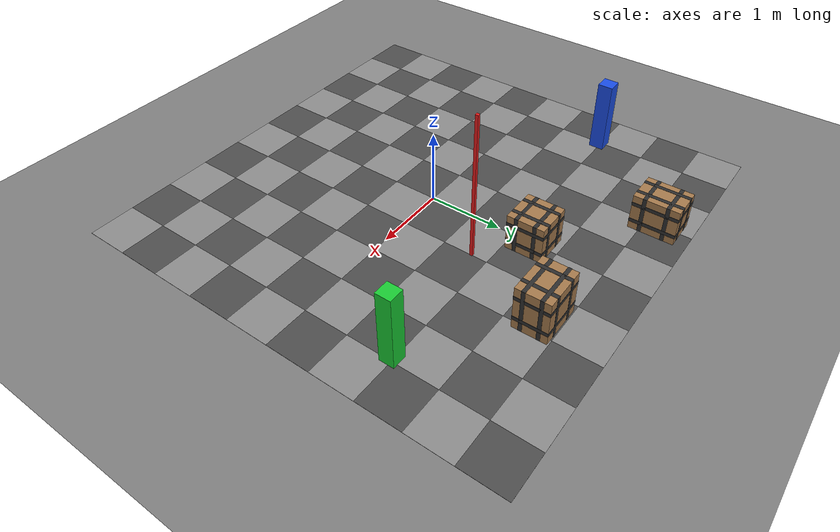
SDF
<sdf version="1.9">
 <world name="ecps295_camtest_tape">
  <physics name="1ms" type="ignore">
   <max_step_size>0.001</max_step_size>
   <real_time_factor>1.0</real_time_factor>
  </physics>
  <plugin filename="gz-sim-physics-system" name="gz::sim::systems::Physics"/>
  <plugin filename="gz-sim-sensors-system" name="gz::sim::systems::Sensors">
   <render_engine>ogre2</render_engine>
  </plugin>
  <plugin filename="gz-sim-user-commands-system" name="gz::sim::systems::UserCommands"/>
  <plugin filename="gz-sim-scene-broadcaster-system" name="gz::sim::systems::SceneBroadcaster"/>
  <plugin filename="gz-sim-imu-system" name="gz::sim::systems::Imu"/>
  <plugin filename="gz-sim-navsat-system" name="gz::sim::systems::NavSat"/>
  <scene><ambient>1 1 1</ambient><background>0.8 0.8 0.8</background></scene>
  <spherical_coordinates>
   <latitude_deg>33.6430</latitude_deg>
   <longitude_deg>-117.8420</longitude_deg>
   <elevation>20</elevation>
   <heading_deg>0</heading_deg>
   <surface_model>EARTH_WGS84</surface_model>
  </spherical_coordinates>
  <light type="directional" name="sun">
   <pose>0 0 10 0 0 0</pose>
   <diffuse>0.8 0.8 0.8 1</diffuse>
   <specular>0.8 0.8 0.8 1</specular>
   <direction>-0.5 0.1 -0.9</direction>
  </light>
  <model name="ground_plane">
   <static>true</static>
   <link name="link">
    <collision name="collision">
     <geometry><plane><normal>0 0 1</normal><size>50 50</size></plane></geometry>
    </collision>
    <visual name="visual">
     <geometry><plane><normal>0 0 1</normal><size>50 50</size></plane></geometry>
     <material><ambient>0.5 0.5 0.5 1</ambient><diffuse>0.5 0.5 0.5 1</diffuse></material>
    </visual>
   </link>
  </model>
  <model name="eva_mat">
   <static>true</static>
   <link name="link">
    <visual name="t0_0">
     <pose>-2.745 -2.745 0.001 0 0 0</pose>
     <geometry><box><size>0.61 0.61 0.002</size></box></geometry>
     <material><ambient>0.3 0.3 0.3 1</ambient><diffuse>0.3 0.3 0.3 1</diffuse></material>
    </visual>
    <visual name="t0_1">
     <pose>-2.745 -2.135 0.001 0 0 0</pose>
     <geometry><box><size>0.61 0.61 0.002</size></box></geometry>
     <material><ambient>0.55 0.55 0.55 1</ambient><diffuse>0.55 0.55 0.55 1</diffuse></material>
    </visual>
    <visual name="t0_2">
     <pose>-2.745 -1.525 0.001 0 0 0</pose>
     <geometry><box><size>0.61 0.61 0.002</size></box></geometry>
     <material><ambient>0.3 0.3 0.3 1</ambient><diffuse>0.3 0.3 0.3 1</diffuse></material>
    </visual>
    <visual name="t0_3">
     <pose>-2.745 -0.915 0.001 0 0 0</pose>
     <geometry><box><size>0.61 0.61 0.002</size></box></geometry>
     <material><ambient>0.55 0.55 0.55 1</ambient><diffuse>0.55 0.55 0.55 1</diffuse></material>
    </visual>
    <visual name="t0_4">
     <pose>-2.745 -0.305 0.001 0 0 0</pose>
     <geometry><box><size>0.61 0.61 0.002</size></box></geometry>
     <material><ambient>0.3 0.3 0.3 1</ambient><diffuse>0.3 0.3 0.3 1</diffuse></material>
    </visual>
    <visual name="t0_5">
     <pose>-2.745 0.305 0.001 0 0 0</pose>
     <geometry><box><size>0.61 0.61 0.002</size></box></geometry>
     <material><ambient>0.55 0.55 0.55 1</ambient><diffuse>0.55 0.55 0.55 1</diffuse></material>
    </visual>
    <visual name="t0_6">
     <pose>-2.745 0.915 0.001 0 0 0</pose>
     <geometry><box><size>0.61 0.61 0.002</size></box></geometry>
     <material><ambient>0.3 0.3 0.3 1</ambient><diffuse>0.3 0.3 0.3 1</diffuse></material>
    </visual>
    <visual name="t0_7">
     <pose>-2.745 1.525 0.001 0 0 0</pose>
     <geometry><box><size>0.61 0.61 0.002</size></box></geometry>
     <material><ambient>0.55 0.55 0.55 1</ambient><diffuse>0.55 0.55 0.55 1</diffuse></material>
    </visual>
    <visual name="t0_8">
     <pose>-2.745 2.135 0.001 0 0 0</pose>
     <geometry><box><size>0.61 0.61 0.002</size></box></geometry>
     <material><ambient>0.3 0.3 0.3 1</ambient><diffuse>0.3 0.3 0.3 1</diffuse></material>
    </visual>
    <visual name="t0_9">
     <pose>-2.745 2.745 0.001 0 0 0</pose>
     <geometry><box><size>0.61 0.61 0.002</size></box></geometry>
     <material><ambient>0.55 0.55 0.55 1</ambient><diffuse>0.55 0.55 0.55 1</diffuse></material>
    </visual>
    <visual name="t1_0">
     <pose>-2.135 -2.745 0.001 0 0 0</pose>
     <geometry><box><size>0.61 0.61 0.002</size></box></geometry>
     <material><ambient>0.55 0.55 0.55 1</ambient><diffuse>0.55 0.55 0.55 1</diffuse></material>
    </visual>
    <visual name="t1_1">
     <pose>-2.135 -2.135 0.001 0 0 0</pose>
     <geometry><box><size>0.61 0.61 0.002</size></box></geometry>
     <material><ambient>0.3 0.3 0.3 1</ambient><diffuse>0.3 0.3 0.3 1</diffuse></material>
    </visual>
    <visual name="t1_2">
     <pose>-2.135 -1.525 0.001 0 0 0</pose>
     <geometry><box><size>0.61 0.61 0.002</size></box></geometry>
     <material><ambient>0.55 0.55 0.55 1</ambient><diffuse>0.55 0.55 0.55 1</diffuse></material>
    </visual>
    <visual name="t1_3">
     <pose>-2.135 -0.915 0.001 0 0 0</pose>
     <geometry><box><size>0.61 0.61 0.002</size></box></geometry>
     <material><ambient>0.3 0.3 0.3 1</ambient><diffuse>0.3 0.3 0.3 1</diffuse></material>
    </visual>
    <visual name="t1_4">
     <pose>-2.135 -0.305 0.001 0 0 0</pose>
     <geometry><box><size>0.61 0.61 0.002</size></box></geometry>
     <material><ambient>0.55 0.55 0.55 1</ambient><diffuse>0.55 0.55 0.55 1</diffuse></material>
    </visual>
    <visual name="t1_5">
     <pose>-2.135 0.305 0.001 0 0 0</pose>
     <geometry><box><size>0.61 0.61 0.002</size></box></geometry>
     <material><ambient>0.3 0.3 0.3 1</ambient><diffuse>0.3 0.3 0.3 1</diffuse></material>
    </visual>
    <visual name="t1_6">
     <pose>-2.135 0.915 0.001 0 0 0</pose>
     <geometry><box><size>0.61 0.61 0.002</size></box></geometry>
     <material><ambient>0.55 0.55 0.55 1</ambient><diffuse>0.55 0.55 0.55 1</diffuse></material>
    </visual>
    <visual name="t1_7">
     <pose>-2.135 1.525 0.001 0 0 0</pose>
     <geometry><box><size>0.61 0.61 0.002</size></box></geometry>
     <material><ambient>0.3 0.3 0.3 1</ambient><diffuse>0.3 0.3 0.3 1</diffuse></material>
    </visual>
    <visual name="t1_8">
     <pose>-2.135 2.135 0.001 0 0 0</pose>
     <geometry><box><size>0.61 0.61 0.002</size></box></geometry>
     <material><ambient>0.55 0.55 0.55 1</ambient><diffuse>0.55 0.55 0.55 1</diffuse></material>
    </visual>
    <visual name="t1_9">
     <pose>-2.135 2.745 0.001 0 0 0</pose>
     <geometry><box><size>0.61 0.61 0.002</size></box></geometry>
     <material><ambient>0.3 0.3 0.3 1</ambient><diffuse>0.3 0.3 0.3 1</diffuse></material>
    </visual>
    <visual name="t2_0">
     <pose>-1.525 -2.745 0.001 0 0 0</pose>
     <geometry><box><size>0.61 0.61 0.002</size></box></geometry>
     <material><ambient>0.3 0.3 0.3 1</ambient><diffuse>0.3 0.3 0.3 1</diffuse></material>
    </visual>
    <visual name="t2_1">
     <pose>-1.525 -2.135 0.001 0 0 0</pose>
     <geometry><box><size>0.61 0.61 0.002</size></box></geometry>
     <material><ambient>0.55 0.55 0.55 1</ambient><diffuse>0.55 0.55 0.55 1</diffuse></material>
    </visual>
    <visual name="t2_2">
     <pose>-1.525 -1.525 0.001 0 0 0</pose>
     <geometry><box><size>0.61 0.61 0.002</size></box></geometry>
     <material><ambient>0.3 0.3 0.3 1</ambient><diffuse>0.3 0.3 0.3 1</diffuse></material>
    </visual>
    <visual name="t2_3">
     <pose>-1.525 -0.915 0.001 0 0 0</pose>
     <geometry><box><size>0.61 0.61 0.002</size></box></geometry>
     <material><ambient>0.55 0.55 0.55 1</ambient><diffuse>0.55 0.55 0.55 1</diffuse></material>
    </visual>
    <visual name="t2_4">
     <pose>-1.525 -0.305 0.001 0 0 0</pose>
     <geometry><box><size>0.61 0.61 0.002</size></box></geometry>
     <material><ambient>0.3 0.3 0.3 1</ambient><diffuse>0.3 0.3 0.3 1</diffuse></material>
    </visual>
    <visual name="t2_5">
     <pose>-1.525 0.305 0.001 0 0 0</pose>
     <geometry><box><size>0.61 0.61 0.002</size></box></geometry>
     <material><ambient>0.55 0.55 0.55 1</ambient><diffuse>0.55 0.55 0.55 1</diffuse></material>
    </visual>
    <visual name="t2_6">
     <pose>-1.525 0.915 0.001 0 0 0</pose>
     <geometry><box><size>0.61 0.61 0.002</size></box></geometry>
     <material><ambient>0.3 0.3 0.3 1</ambient><diffuse>0.3 0.3 0.3 1</diffuse></material>
    </visual>
    <visual name="t2_7">
     <pose>-1.525 1.525 0.001 0 0 0</pose>
     <geometry><box><size>0.61 0.61 0.002</size></box></geometry>
     <material><ambient>0.55 0.55 0.55 1</ambient><diffuse>0.55 0.55 0.55 1</diffuse></material>
    </visual>
    <visual name="t2_8">
     <pose>-1.525 2.135 0.001 0 0 0</pose>
     <geometry><box><size>0.61 0.61 0.002</size></box></geometry>
     <material><ambient>0.3 0.3 0.3 1</ambient><diffuse>0.3 0.3 0.3 1</diffuse></material>
    </visual>
    <visual name="t2_9">
     <pose>-1.525 2.745 0.001 0 0 0</pose>
     <geometry><box><size>0.61 0.61 0.002</size></box></geometry>
     <material><ambient>0.55 0.55 0.55 1</ambient><diffuse>0.55 0.55 0.55 1</diffuse></material>
    </visual>
    <visual name="t3_0">
     <pose>-0.915 -2.745 0.001 0 0 0</pose>
     <geometry><box><size>0.61 0.61 0.002</size></box></geometry>
     <material><ambient>0.55 0.55 0.55 1</ambient><diffuse>0.55 0.55 0.55 1</diffuse></material>
    </visual>
    <visual name="t3_1">
     <pose>-0.915 -2.135 0.001 0 0 0</pose>
     <geometry><box><size>0.61 0.61 0.002</size></box></geometry>
     <material><ambient>0.3 0.3 0.3 1</ambient><diffuse>0.3 0.3 0.3 1</diffuse></material>
    </visual>
    <visual name="t3_2">
     <pose>-0.915 -1.525 0.001 0 0 0</pose>
     <geometry><box><size>0.61 0.61 0.002</size></box></geometry>
     <material><ambient>0.55 0.55 0.55 1</ambient><diffuse>0.55 0.55 0.55 1</diffuse></material>
    </visual>
    <visual name="t3_3">
     <pose>-0.915 -0.915 0.001 0 0 0</pose>
     <geometry><box><size>0.61 0.61 0.002</size></box></geometry>
     <material><ambient>0.3 0.3 0.3 1</ambient><diffuse>0.3 0.3 0.3 1</diffuse></material>
    </visual>
    <visual name="t3_4">
     <pose>-0.915 -0.305 0.001 0 0 0</pose>
     <geometry><box><size>0.61 0.61 0.002</size></box></geometry>
     <material><ambient>0.55 0.55 0.55 1</ambient><diffuse>0.55 0.55 0.55 1</diffuse></material>
    </visual>
    <visual name="t3_5">
     <pose>-0.915 0.305 0.001 0 0 0</pose>
     <geometry><box><size>0.61 0.61 0.002</size></box></geometry>
     <material><ambient>0.3 0.3 0.3 1</ambient><diffuse>0.3 0.3 0.3 1</diffuse></material>
    </visual>
    <visual name="t3_6">
     <pose>-0.915 0.915 0.001 0 0 0</pose>
     <geometry><box><size>0.61 0.61 0.002</size></box></geometry>
     <material><ambient>0.55 0.55 0.55 1</ambient><diffuse>0.55 0.55 0.55 1</diffuse></material>
    </visual>
    <visual name="t3_7">
     <pose>-0.915 1.525 0.001 0 0 0</pose>
     <geometry><box><size>0.61 0.61 0.002</size></box></geometry>
     <material><ambient>0.3 0.3 0.3 1</ambient><diffuse>0.3 0.3 0.3 1</diffuse></material>
    </visual>
    <visual name="t3_8">
     <pose>-0.915 2.135 0.001 0 0 0</pose>
     <geometry><box><size>0.61 0.61 0.002</size></box></geometry>
     <material><ambient>0.55 0.55 0.55 1</ambient><diffuse>0.55 0.55 0.55 1</diffuse></material>
    </visual>
    <visual name="t3_9">
     <pose>-0.915 2.745 0.001 0 0 0</pose>
     <geometry><box><size>0.61 0.61 0.002</size></box></geometry>
     <material><ambient>0.3 0.3 0.3 1</ambient><diffuse>0.3 0.3 0.3 1</diffuse></material>
    </visual>
    <visual name="t4_0">
     <pose>-0.305 -2.745 0.001 0 0 0</pose>
     <geometry><box><size>0.61 0.61 0.002</size></box></geometry>
     <material><ambient>0.3 0.3 0.3 1</ambient><diffuse>0.3 0.3 0.3 1</diffuse></material>
    </visual>
    <visual name="t4_1">
     <pose>-0.305 -2.135 0.001 0 0 0</pose>
     <geometry><box><size>0.61 0.61 0.002</size></box></geometry>
     <material><ambient>0.55 0.55 0.55 1</ambient><diffuse>0.55 0.55 0.55 1</diffuse></material>
    </visual>
    <visual name="t4_2">
     <pose>-0.305 -1.525 0.001 0 0 0</pose>
     <geometry><box><size>0.61 0.61 0.002</size></box></geometry>
     <material><ambient>0.3 0.3 0.3 1</ambient><diffuse>0.3 0.3 0.3 1</diffuse></material>
    </visual>
    <visual name="t4_3">
     <pose>-0.305 -0.915 0.001 0 0 0</pose>
     <geometry><box><size>0.61 0.61 0.002</size></box></geometry>
     <material><ambient>0.55 0.55 0.55 1</ambient><diffuse>0.55 0.55 0.55 1</diffuse></material>
    </visual>
    <visual name="t4_4">
     <pose>-0.305 -0.305 0.001 0 0 0</pose>
     <geometry><box><size>0.61 0.61 0.002</size></box></geometry>
     <material><ambient>0.3 0.3 0.3 1</ambient><diffuse>0.3 0.3 0.3 1</diffuse></material>
    </visual>
    <visual name="t4_5">
     <pose>-0.305 0.305 0.001 0 0 0</pose>
     <geometry><box><size>0.61 0.61 0.002</size></box></geometry>
     <material><ambient>0.55 0.55 0.55 1</ambient><diffuse>0.55 0.55 0.55 1</diffuse></material>
    </visual>
    <visual name="t4_6">
     <pose>-0.305 0.915 0.001 0 0 0</pose>
     <geometry><box><size>0.61 0.61 0.002</size></box></geometry>
     <material><ambient>0.3 0.3 0.3 1</ambient><diffuse>0.3 0.3 0.3 1</diffuse></material>
    </visual>
    <visual name="t4_7">
     <pose>-0.305 1.525 0.001 0 0 0</pose>
     <geometry><box><size>0.61 0.61 0.002</size></box></geometry>
     <material><ambient>0.55 0.55 0.55 1</ambient><diffuse>0.55 0.55 0.55 1</diffuse></material>
    </visual>
    <visual name="t4_8">
     <pose>-0.305 2.135 0.001 0 0 0</pose>
     <geometry><box><size>0.61 0.61 0.002</size></box></geometry>
     <material><ambient>0.3 0.3 0.3 1</ambient><diffuse>0.3 0.3 0.3 1</diffuse></material>
    </visual>
    <visual name="t4_9">
     <pose>-0.305 2.745 0.001 0 0 0</pose>
     <geometry><box><size>0.61 0.61 0.002</size></box></geometry>
     <material><ambient>0.55 0.55 0.55 1</ambient><diffuse>0.55 0.55 0.55 1</diffuse></material>
    </visual>
    <visual name="t5_0">
     <pose>0.305 -2.745 0.001 0 0 0</pose>
     <geometry><box><size>0.61 0.61 0.002</size></box></geometry>
     <material><ambient>0.55 0.55 0.55 1</ambient><diffuse>0.55 0.55 0.55 1</diffuse></material>
    </visual>
    <visual name="t5_1">
     <pose>0.305 -2.135 0.001 0 0 0</pose>
     <geometry><box><size>0.61 0.61 0.002</size></box></geometry>
     <material><ambient>0.3 0.3 0.3 1</ambient><diffuse>0.3 0.3 0.3 1</diffuse></material>
    </visual>
    <visual name="t5_2">
     <pose>0.305 -1.525 0.001 0 0 0</pose>
     <geometry><box><size>0.61 0.61 0.002</size></box></geometry>
     <material><ambient>0.55 0.55 0.55 1</ambient><diffuse>0.55 0.55 0.55 1</diffuse></material>
    </visual>
    <visual name="t5_3">
     <pose>0.305 -0.915 0.001 0 0 0</pose>
     <geometry><box><size>0.61 0.61 0.002</size></box></geometry>
     <material><ambient>0.3 0.3 0.3 1</ambient><diffuse>0.3 0.3 0.3 1</diffuse></material>
    </visual>
    <visual name="t5_4">
     <pose>0.305 -0.305 0.001 0 0 0</pose>
     <geometry><box><size>0.61 0.61 0.002</size></box></geometry>
     <material><ambient>0.55 0.55 0.55 1</ambient><diffuse>0.55 0.55 0.55 1</diffuse></material>
    </visual>
    <visual name="t5_5">
     <pose>0.305 0.305 0.001 0 0 0</pose>
     <geometry><box><size>0.61 0.61 0.002</size></box></geometry>
     <material><ambient>0.3 0.3 0.3 1</ambient><diffuse>0.3 0.3 0.3 1</diffuse></material>
    </visual>
    <visual name="t5_6">
     <pose>0.305 0.915 0.001 0 0 0</pose>
     <geometry><box><size>0.61 0.61 0.002</size></box></geometry>
     <material><ambient>0.55 0.55 0.55 1</ambient><diffuse>0.55 0.55 0.55 1</diffuse></material>
    </visual>
    <visual name="t5_7">
     <pose>0.305 1.525 0.001 0 0 0</pose>
     <geometry><box><size>0.61 0.61 0.002</size></box></geometry>
     <material><ambient>0.3 0.3 0.3 1</ambient><diffuse>0.3 0.3 0.3 1</diffuse></material>
    </visual>
    <visual name="t5_8">
     <pose>0.305 2.135 0.001 0 0 0</pose>
     <geometry><box><size>0.61 0.61 0.002</size></box></geometry>
     <material><ambient>0.55 0.55 0.55 1</ambient><diffuse>0.55 0.55 0.55 1</diffuse></material>
    </visual>
    <visual name="t5_9">
     <pose>0.305 2.745 0.001 0 0 0</pose>
     <geometry><box><size>0.61 0.61 0.002</size></box></geometry>
     <material><ambient>0.3 0.3 0.3 1</ambient><diffuse>0.3 0.3 0.3 1</diffuse></material>
    </visual>
    <visual name="t6_0">
     <pose>0.915 -2.745 0.001 0 0 0</pose>
     <geometry><box><size>0.61 0.61 0.002</size></box></geometry>
     <material><ambient>0.3 0.3 0.3 1</ambient><diffuse>0.3 0.3 0.3 1</diffuse></material>
    </visual>
    <visual name="t6_1">
     <pose>0.915 -2.135 0.001 0 0 0</pose>
     <geometry><box><size>0.61 0.61 0.002</size></box></geometry>
     <material><ambient>0.55 0.55 0.55 1</ambient><diffuse>0.55 0.55 0.55 1</diffuse></material>
    </visual>
    <visual name="t6_2">
     <pose>0.915 -1.525 0.001 0 0 0</pose>
     <geometry><box><size>0.61 0.61 0.002</size></box></geometry>
     <material><ambient>0.3 0.3 0.3 1</ambient><diffuse>0.3 0.3 0.3 1</diffuse></material>
    </visual>
    <visual name="t6_3">
     <pose>0.915 -0.915 0.001 0 0 0</pose>
     <geometry><box><size>0.61 0.61 0.002</size></box></geometry>
     <material><ambient>0.55 0.55 0.55 1</ambient><diffuse>0.55 0.55 0.55 1</diffuse></material>
    </visual>
    <visual name="t6_4">
     <pose>0.915 -0.305 0.001 0 0 0</pose>
     <geometry><box><size>0.61 0.61 0.002</size></box></geometry>
     <material><ambient>0.3 0.3 0.3 1</ambient><diffuse>0.3 0.3 0.3 1</diffuse></material>
    </visual>
    <visual name="t6_5">
     <pose>0.915 0.305 0.001 0 0 0</pose>
     <geometry><box><size>0.61 0.61 0.002</size></box></geometry>
     <material><ambient>0.55 0.55 0.55 1</ambient><diffuse>0.55 0.55 0.55 1</diffuse></material>
    </visual>
    <visual name="t6_6">
     <pose>0.915 0.915 0.001 0 0 0</pose>
     <geometry><box><size>0.61 0.61 0.002</size></box></geometry>
     <material><ambient>0.3 0.3 0.3 1</ambient><diffuse>0.3 0.3 0.3 1</diffuse></material>
    </visual>
    <visual name="t6_7">
     <pose>0.915 1.525 0.001 0 0 0</pose>
     <geometry><box><size>0.61 0.61 0.002</size></box></geometry>
     <material><ambient>0.55 0.55 0.55 1</ambient><diffuse>0.55 0.55 0.55 1</diffuse></material>
    </visual>
    <visual name="t6_8">
     <pose>0.915 2.135 0.001 0 0 0</pose>
     <geometry><box><size>0.61 0.61 0.002</size></box></geometry>
     <material><ambient>0.3 0.3 0.3 1</ambient><diffuse>0.3 0.3 0.3 1</diffuse></material>
    </visual>
    <visual name="t6_9">
     <pose>0.915 2.745 0.001 0 0 0</pose>
     <geometry><box><size>0.61 0.61 0.002</size></box></geometry>
     <material><ambient>0.55 0.55 0.55 1</ambient><diffuse>0.55 0.55 0.55 1</diffuse></material>
    </visual>
    <visual name="t7_0">
     <pose>1.525 -2.745 0.001 0 0 0</pose>
     <geometry><box><size>0.61 0.61 0.002</size></box></geometry>
     <material><ambient>0.55 0.55 0.55 1</ambient><diffuse>0.55 0.55 0.55 1</diffuse></material>
    </visual>
    <visual name="t7_1">
     <pose>1.525 -2.135 0.001 0 0 0</pose>
     <geometry><box><size>0.61 0.61 0.002</size></box></geometry>
     <material><ambient>0.3 0.3 0.3 1</ambient><diffuse>0.3 0.3 0.3 1</diffuse></material>
    </visual>
    <visual name="t7_2">
     <pose>1.525 -1.525 0.001 0 0 0</pose>
     <geometry><box><size>0.61 0.61 0.002</size></box></geometry>
     <material><ambient>0.55 0.55 0.55 1</ambient><diffuse>0.55 0.55 0.55 1</diffuse></material>
    </visual>
    <visual name="t7_3">
     <pose>1.525 -0.915 0.001 0 0 0</pose>
     <geometry><box><size>0.61 0.61 0.002</size></box></geometry>
     <material><ambient>0.3 0.3 0.3 1</ambient><diffuse>0.3 0.3 0.3 1</diffuse></material>
    </visual>
    <visual name="t7_4">
     <pose>1.525 -0.305 0.001 0 0 0</pose>
     <geometry><box><size>0.61 0.61 0.002</size></box></geometry>
     <material><ambient>0.55 0.55 0.55 1</ambient><diffuse>0.55 0.55 0.55 1</diffuse></material>
    </visual>
    <visual name="t7_5">
     <pose>1.525 0.305 0.001 0 0 0</pose>
     <geometry><box><size>0.61 0.61 0.002</size></box></geometry>
     <material><ambient>0.3 0.3 0.3 1</ambient><diffuse>0.3 0.3 0.3 1</diffuse></material>
    </visual>
    <visual name="t7_6">
     <pose>1.525 0.915 0.001 0 0 0</pose>
     <geometry><box><size>0.61 0.61 0.002</size></box></geometry>
     <material><ambient>0.55 0.55 0.55 1</ambient><diffuse>0.55 0.55 0.55 1</diffuse></material>
    </visual>
    <visual name="t7_7">
     <pose>1.525 1.525 0.001 0 0 0</pose>
     <geometry><box><size>0.61 0.61 0.002</size></box></geometry>
     <material><ambient>0.3 0.3 0.3 1</ambient><diffuse>0.3 0.3 0.3 1</diffuse></material>
    </visual>
    <visual name="t7_8">
     <pose>1.525 2.135 0.001 0 0 0</pose>
     <geometry><box><size>0.61 0.61 0.002</size></box></geometry>
     <material><ambient>0.55 0.55 0.55 1</ambient><diffuse>0.55 0.55 0.55 1</diffuse></material>
    </visual>
    <visual name="t7_9">
     <pose>1.525 2.745 0.001 0 0 0</pose>
     <geometry><box><size>0.61 0.61 0.002</size></box></geometry>
     <material><ambient>0.3 0.3 0.3 1</ambient><diffuse>0.3 0.3 0.3 1</diffuse></material>
    </visual>
    <visual name="t8_0">
     <pose>2.135 -2.745 0.001 0 0 0</pose>
     <geometry><box><size>0.61 0.61 0.002</size></box></geometry>
     <material><ambient>0.3 0.3 0.3 1</ambient><diffuse>0.3 0.3 0.3 1</diffuse></material>
    </visual>
    <visual name="t8_1">
     <pose>2.135 -2.135 0.001 0 0 0</pose>
     <geometry><box><size>0.61 0.61 0.002</size></box></geometry>
     <material><ambient>0.55 0.55 0.55 1</ambient><diffuse>0.55 0.55 0.55 1</diffuse></material>
    </visual>
    <visual name="t8_2">
     <pose>2.135 -1.525 0.001 0 0 0</pose>
     <geometry><box><size>0.61 0.61 0.002</size></box></geometry>
     <material><ambient>0.3 0.3 0.3 1</ambient><diffuse>0.3 0.3 0.3 1</diffuse></material>
    </visual>
    <visual name="t8_3">
     <pose>2.135 -0.915 0.001 0 0 0</pose>
     <geometry><box><size>0.61 0.61 0.002</size></box></geometry>
     <material><ambient>0.55 0.55 0.55 1</ambient><diffuse>0.55 0.55 0.55 1</diffuse></material>
    </visual>
    <visual name="t8_4">
     <pose>2.135 -0.305 0.001 0 0 0</pose>
     <geometry><box><size>0.61 0.61 0.002</size></box></geometry>
     <material><ambient>0.3 0.3 0.3 1</ambient><diffuse>0.3 0.3 0.3 1</diffuse></material>
    </visual>
    <visual name="t8_5">
     <pose>2.135 0.305 0.001 0 0 0</pose>
     <geometry><box><size>0.61 0.61 0.002</size></box></geometry>
     <material><ambient>0.55 0.55 0.55 1</ambient><diffuse>0.55 0.55 0.55 1</diffuse></material>
    </visual>
    <visual name="t8_6">
     <pose>2.135 0.915 0.001 0 0 0</pose>
     <geometry><box><size>0.61 0.61 0.002</size></box></geometry>
     <material><ambient>0.3 0.3 0.3 1</ambient><diffuse>0.3 0.3 0.3 1</diffuse></material>
    </visual>
    <visual name="t8_7">
     <pose>2.135 1.525 0.001 0 0 0</pose>
     <geometry><box><size>0.61 0.61 0.002</size></box></geometry>
     <material><ambient>0.55 0.55 0.55 1</ambient><diffuse>0.55 0.55 0.55 1</diffuse></material>
    </visual>
    <visual name="t8_8">
     <pose>2.135 2.135 0.001 0 0 0</pose>
     <geometry><box><size>0.61 0.61 0.002</size></box></geometry>
     <material><ambient>0.3 0.3 0.3 1</ambient><diffuse>0.3 0.3 0.3 1</diffuse></material>
    </visual>
    <visual name="t8_9">
     <pose>2.135 2.745 0.001 0 0 0</pose>
     <geometry><box><size>0.61 0.61 0.002</size></box></geometry>
     <material><ambient>0.55 0.55 0.55 1</ambient><diffuse>0.55 0.55 0.55 1</diffuse></material>
    </visual>
    <visual name="t9_0">
     <pose>2.745 -2.745 0.001 0 0 0</pose>
     <geometry><box><size>0.61 0.61 0.002</size></box></geometry>
     <material><ambient>0.55 0.55 0.55 1</ambient><diffuse>0.55 0.55 0.55 1</diffuse></material>
    </visual>
    <visual name="t9_1">
     <pose>2.745 -2.135 0.001 0 0 0</pose>
     <geometry><box><size>0.61 0.61 0.002</size></box></geometry>
     <material><ambient>0.3 0.3 0.3 1</ambient><diffuse>0.3 0.3 0.3 1</diffuse></material>
    </visual>
    <visual name="t9_2">
     <pose>2.745 -1.525 0.001 0 0 0</pose>
     <geometry><box><size>0.61 0.61 0.002</size></box></geometry>
     <material><ambient>0.55 0.55 0.55 1</ambient><diffuse>0.55 0.55 0.55 1</diffuse></material>
    </visual>
    <visual name="t9_3">
     <pose>2.745 -0.915 0.001 0 0 0</pose>
     <geometry><box><size>0.61 0.61 0.002</size></box></geometry>
     <material><ambient>0.3 0.3 0.3 1</ambient><diffuse>0.3 0.3 0.3 1</diffuse></material>
    </visual>
    <visual name="t9_4">
     <pose>2.745 -0.305 0.001 0 0 0</pose>
     <geometry><box><size>0.61 0.61 0.002</size></box></geometry>
     <material><ambient>0.55 0.55 0.55 1</ambient><diffuse>0.55 0.55 0.55 1</diffuse></material>
    </visual>
    <visual name="t9_5">
     <pose>2.745 0.305 0.001 0 0 0</pose>
     <geometry><box><size>0.61 0.61 0.002</size></box></geometry>
     <material><ambient>0.3 0.3 0.3 1</ambient><diffuse>0.3 0.3 0.3 1</diffuse></material>
    </visual>
    <visual name="t9_6">
     <pose>2.745 0.915 0.001 0 0 0</pose>
     <geometry><box><size>0.61 0.61 0.002</size></box></geometry>
     <material><ambient>0.55 0.55 0.55 1</ambient><diffuse>0.55 0.55 0.55 1</diffuse></material>
    </visual>
    <visual name="t9_7">
     <pose>2.745 1.525 0.001 0 0 0</pose>
     <geometry><box><size>0.61 0.61 0.002</size></box></geometry>
     <material><ambient>0.3 0.3 0.3 1</ambient><diffuse>0.3 0.3 0.3 1</diffuse></material>
    </visual>
    <visual name="t9_8">
     <pose>2.745 2.135 0.001 0 0 0</pose>
     <geometry><box><size>0.61 0.61 0.002</size></box></geometry>
     <material><ambient>0.55 0.55 0.55 1</ambient><diffuse>0.55 0.55 0.55 1</diffuse></material>
    </visual>
    <visual name="t9_9">
     <pose>2.745 2.745 0.001 0 0 0</pose>
     <geometry><box><size>0.61 0.61 0.002</size></box></geometry>
     <material><ambient>0.3 0.3 0.3 1</ambient><diffuse>0.3 0.3 0.3 1</diffuse></material>
    </visual>
   </link>
  </model>
  <model name="box_a">
   <static>true</static>
   <pose>0.0 1.5 0.25 0 0 0</pose>
   <link name="link">
    <collision name="c"><geometry><box><size>0.5 0.5 0.5</size></box></geometry></collision>
    <visual name="v">
     <geometry><box><size>0.5 0.5 0.5</size></box></geometry>
     <material><ambient>0.65 0.48 0.30 1</ambient><diffuse>0.65 0.48 0.30 1</diffuse></material>
    </visual>
    <visual name="tape_ring0">
     <pose>0.000 0.000 -0.125 0 0 0</pose>
     <geometry><box><size>0.504 0.504 0.050</size></box></geometry>
     <material><ambient>0.18 0.18 0.18 1</ambient><diffuse>0.18 0.18 0.18 1</diffuse></material>
    </visual>
    <visual name="tape_bx0">
     <pose>-0.125 0.000 0.000 0 0 0</pose>
     <geometry><box><size>0.050 0.504 0.504</size></box></geometry>
     <material><ambient>0.18 0.18 0.18 1</ambient><diffuse>0.18 0.18 0.18 1</diffuse></material>
    </visual>
    <visual name="tape_by0">
     <pose>0.000 -0.125 0.000 0 0 0</pose>
     <geometry><box><size>0.504 0.050 0.504</size></box></geometry>
     <material><ambient>0.18 0.18 0.18 1</ambient><diffuse>0.18 0.18 0.18 1</diffuse></material>
    </visual>
    <visual name="tape_ring1">
     <pose>0.000 0.000 0.125 0 0 0</pose>
     <geometry><box><size>0.504 0.504 0.050</size></box></geometry>
     <material><ambient>0.18 0.18 0.18 1</ambient><diffuse>0.18 0.18 0.18 1</diffuse></material>
    </visual>
    <visual name="tape_bx1">
     <pose>0.125 0.000 0.000 0 0 0</pose>
     <geometry><box><size>0.050 0.504 0.504</size></box></geometry>
     <material><ambient>0.18 0.18 0.18 1</ambient><diffuse>0.18 0.18 0.18 1</diffuse></material>
    </visual>
    <visual name="tape_by1">
     <pose>0.000 0.125 0.000 0 0 0</pose>
     <geometry><box><size>0.504 0.050 0.504</size></box></geometry>
     <material><ambient>0.18 0.18 0.18 1</ambient><diffuse>0.18 0.18 0.18 1</diffuse></material>
    </visual>
   </link>
  </model>
  <model name="box_b">
   <static>true</static>
   <pose>1.0 2.2 0.3 0 0 0</pose>
   <link name="link">
    <collision name="c"><geometry><box><size>0.6 0.45 0.6</size></box></geometry></collision>
    <visual name="v">
     <geometry><box><size>0.6 0.45 0.6</size></box></geometry>
     <material><ambient>0.65 0.48 0.30 1</ambient><diffuse>0.65 0.48 0.30 1</diffuse></material>
    </visual>
    <visual name="tape_ring0">
     <pose>0.000 0.000 -0.150 0 0 0</pose>
     <geometry><box><size>0.604 0.454 0.050</size></box></geometry>
     <material><ambient>0.18 0.18 0.18 1</ambient><diffuse>0.18 0.18 0.18 1</diffuse></material>
    </visual>
    <visual name="tape_bx0">
     <pose>-0.150 0.000 0.000 0 0 0</pose>
     <geometry><box><size>0.050 0.454 0.604</size></box></geometry>
     <material><ambient>0.18 0.18 0.18 1</ambient><diffuse>0.18 0.18 0.18 1</diffuse></material>
    </visual>
    <visual name="tape_by0">
     <pose>0.000 -0.113 0.000 0 0 0</pose>
     <geometry><box><size>0.604 0.050 0.604</size></box></geometry>
     <material><ambient>0.18 0.18 0.18 1</ambient><diffuse>0.18 0.18 0.18 1</diffuse></material>
    </visual>
    <visual name="tape_ring1">
     <pose>0.000 0.000 0.150 0 0 0</pose>
     <geometry><box><size>0.604 0.454 0.050</size></box></geometry>
     <material><ambient>0.18 0.18 0.18 1</ambient><diffuse>0.18 0.18 0.18 1</diffuse></material>
    </visual>
    <visual name="tape_bx1">
     <pose>0.150 0.000 0.000 0 0 0</pose>
     <geometry><box><size>0.050 0.454 0.604</size></box></geometry>
     <material><ambient>0.18 0.18 0.18 1</ambient><diffuse>0.18 0.18 0.18 1</diffuse></material>
    </visual>
    <visual name="tape_by1">
     <pose>0.000 0.113 0.000 0 0 0</pose>
     <geometry><box><size>0.604 0.050 0.604</size></box></geometry>
     <material><ambient>0.18 0.18 0.18 1</ambient><diffuse>0.18 0.18 0.18 1</diffuse></material>
    </visual>
   </link>
  </model>
  <model name="box_c">
   <static>true</static>
   <pose>-1.2 2.6 0.25 0 0 0</pose>
   <link name="link">
    <collision name="c"><geometry><box><size>0.45 0.6 0.5</size></box></geometry></collision>
    <visual name="v">
     <geometry><box><size>0.45 0.6 0.5</size></box></geometry>
     <material><ambient>0.65 0.48 0.30 1</ambient><diffuse>0.65 0.48 0.30 1</diffuse></material>
    </visual>
    <visual name="tape_ring0">
     <pose>0.000 0.000 -0.125 0 0 0</pose>
     <geometry><box><size>0.454 0.604 0.050</size></box></geometry>
     <material><ambient>0.18 0.18 0.18 1</ambient><diffuse>0.18 0.18 0.18 1</diffuse></material>
    </visual>
    <visual name="tape_bx0">
     <pose>-0.113 0.000 0.000 0 0 0</pose>
     <geometry><box><size>0.050 0.604 0.504</size></box></geometry>
     <material><ambient>0.18 0.18 0.18 1</ambient><diffuse>0.18 0.18 0.18 1</diffuse></material>
    </visual>
    <visual name="tape_by0">
     <pose>0.000 -0.150 0.000 0 0 0</pose>
     <geometry><box><size>0.454 0.050 0.504</size></box></geometry>
     <material><ambient>0.18 0.18 0.18 1</ambient><diffuse>0.18 0.18 0.18 1</diffuse></material>
    </visual>
    <visual name="tape_ring1">
     <pose>0.000 0.000 0.125 0 0 0</pose>
     <geometry><box><size>0.454 0.604 0.050</size></box></geometry>
     <material><ambient>0.18 0.18 0.18 1</ambient><diffuse>0.18 0.18 0.18 1</diffuse></material>
    </visual>
    <visual name="tape_bx1">
     <pose>0.113 0.000 0.000 0 0 0</pose>
     <geometry><box><size>0.050 0.604 0.504</size></box></geometry>
     <material><ambient>0.18 0.18 0.18 1</ambient><diffuse>0.18 0.18 0.18 1</diffuse></material>
    </visual>
    <visual name="tape_by1">
     <pose>0.000 0.150 0.000 0 0 0</pose>
     <geometry><box><size>0.454 0.050 0.504</size></box></geometry>
     <material><ambient>0.18 0.18 0.18 1</ambient><diffuse>0.18 0.18 0.18 1</diffuse></material>
    </visual>
   </link>
  </model>
  <model name="pole">
   <static>true</static>
   <pose>0.6 1.0 1.0 0 0 0</pose>
   <link name="link">
    <collision name="c"><geometry><box><size>0.04 0.04 2.0</size></box></geometry></collision>
    <visual name="v">
     <geometry><box><size>0.04 0.04 2.0</size></box></geometry>
     <material><ambient>0.90 0.10 0.10 1</ambient><diffuse>0.90 0.10 0.10 1</diffuse></material>
    </visual>
   </link>
  </model>
  <model name="marker_left">
   <static>true</static>
   <pose>-2.4 1.2 0.5 0 0 0</pose>
   <link name="link">
    <collision name="c"><geometry><box><size>0.2 0.2 1.0</size></box></geometry></collision>
    <visual name="v">
     <geometry><box><size>0.2 0.2 1.0</size></box></geometry>
     <material><ambient>0.10 0.30 0.90 1</ambient><diffuse>0.10 0.30 0.90 1</diffuse></material>
    </visual>
   </link>
  </model>
  <model name="marker_right">
   <static>true</static>
   <pose>2.4 1.2 0.5 0 0 0</pose>
   <link name="link">
    <collision name="c"><geometry><box><size>0.2 0.2 1.0</size></box></geometry></collision>
    <visual name="v">
     <geometry><box><size>0.2 0.2 1.0</size></box></geometry>
     <material><ambient>0.10 0.80 0.20 1</ambient><diffuse>0.10 0.80 0.20 1</diffuse></material>
    </visual>
   </link>
  </model>
 </world>
</sdf>
